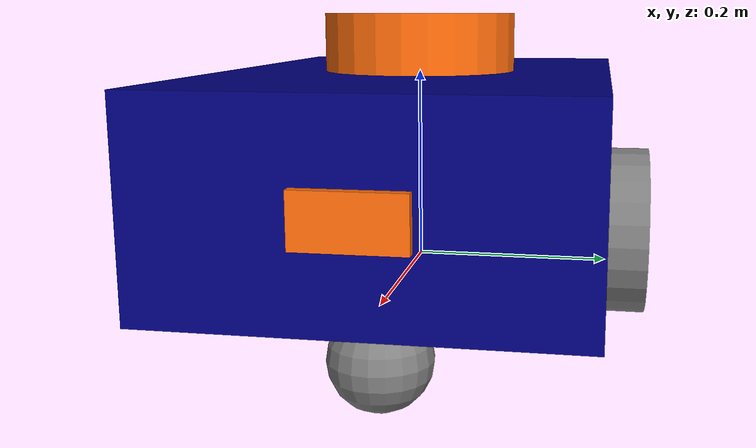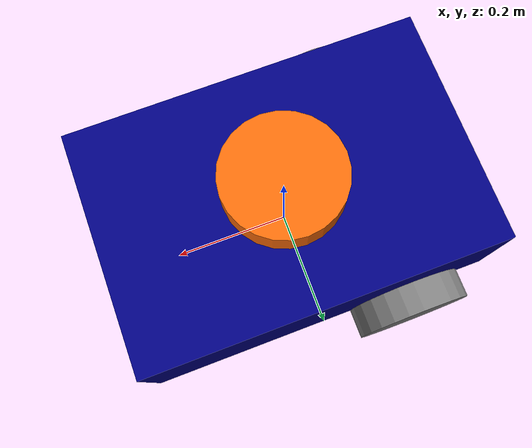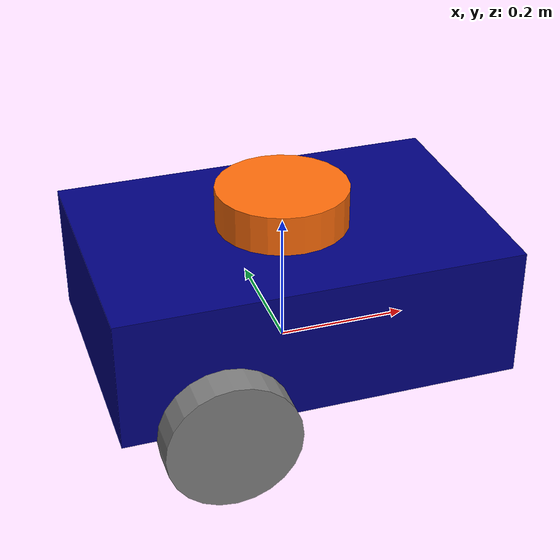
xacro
<?xml version="1.0"?>
<robot name="my_robot" xmlns:xacro="http://www.ros.org/wiki/xacro">

    <xacro:include filename="common_properties.xacro" />
    <xacro:include filename="mobile_base.xacro" />
    <xacro:include filename="mobile_base_gazebo.xacro" />
    <xacro:include filename="base_scan.xacro" />
    <xacro:include filename="camera.xacro" />

</robot>

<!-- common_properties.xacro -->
<robot xmlns:xacro="http://www.ros.org/wiki/xacro">

    <material name="blue">
        <color rgba="0 0 0.5 1" />
    </material>

    <material name="grey">
        <color rgba="0.5 0.5 0.5 1" />
    </material>

    <material name="orange">
    <color rgba="${255/255} ${108/255} ${10/255} 1.0"/>
    </material>

    <xacro:macro name="box_inertia" params="m l w h xyz rpy">
        <inertial>
            <origin xyz="${xyz}" rpy="${rpy}" />
            <mass value="${m}" />
            <inertia ixx="${(m/12) * (h*h + l*l)}" ixy="0" ixz="0"
                     iyy="${(m/12) * (w*w + l*l)}" iyz="0"
                     izz="${(m/12) * (w*w + h*h)}" />
        </inertial>
    </xacro:macro>

    <xacro:macro name="cylinder_inertia" params="m r h xyz rpy">
        <inertial>
            <origin xyz="${xyz}" rpy="${rpy}" />
            <mass value="${m}" />
            <inertia ixx="${(m/12) * (3*r*r + h*h)}" ixy="0" ixz="0"
                     iyy="${(m/12) * (3*r*r + h*h)}" iyz="0"
                     izz="${(m/2) * (r*r)}" />
        </inertial>
    </xacro:macro>

    <xacro:macro name="sphere_inertia" params="m r xyz rpy">
        <inertial>
            <origin xyz="${xyz}" rpy="${rpy}" />
            <mass value="${m}" />
            <inertia ixx="${(2/5) * m * r * r}" ixy="0" ixz="0"
                     iyy="${(2/5) * m * r * r}" iyz="0"
                     izz="${(2/5) * m * r * r}" />
        </inertial>
    </xacro:macro>

</robot>

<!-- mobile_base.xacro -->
<robot xmlns:xacro="http://www.ros.org/wiki/xacro">

    <xacro:property name="base_length" value="0.6" />
    <xacro:property name="base_width" value="0.4" />
    <xacro:property name="base_height" value="0.2" />
    <xacro:property name="wheel_radius" value="0.1" />
    <xacro:property name="wheel_length" value="0.05" />

    <link name="base_footprint" />

    <link name="base_link">
        <visual>
            <geometry>
                <box size="${base_length} ${base_width} ${base_height}" />
            </geometry>
            <origin xyz="0 0 ${base_height / 2.0}" rpy="0 0 0" />
            <material name="blue" />
        </visual>
        <collision>
            <geometry>
                <box size="${base_length} ${base_width} ${base_height}" />
            </geometry>
            <origin xyz="0 0 ${base_height / 2.0}" rpy="0 0 0" />
        </collision>
        <xacro:box_inertia m="5.0" l="${2*base_length}" w="${2*base_width}" h="${2*base_height}"
                           xyz="0 0 ${base_height / 2.0}" rpy="0 0 0" />
    </link>

    <xacro:macro name="wheel_link" params="prefix">
        <link name="${prefix}_wheel_link">
            <visual>
                <geometry>
                    <cylinder radius="${wheel_radius}" length="${wheel_length}" />
                </geometry>
                <origin xyz="0 0 0" rpy="${pi / 2.0} 0 0" />
                <material name="grey" />
            </visual>
            <collision>
                <geometry>
                    <cylinder radius="${wheel_radius}" length="${wheel_length}" />
                </geometry>
                <origin xyz="0 0 0" rpy="${pi / 2.0} 0 0" />
            </collision>
            <xacro:cylinder_inertia m="1.0" r="${2*wheel_radius}" h="${2*wheel_length}"
                                    xyz="0 0 0" rpy="${pi / 2.0} 0 0" />
        </link>
    </xacro:macro>

    <xacro:wheel_link prefix="right" />
    <xacro:wheel_link prefix="left" />

    <link name="caster_wheel_link">
        <visual>
            <geometry>
                <sphere radius="${wheel_radius / 2.0}" />
            </geometry>
            <origin xyz="0 0 0" rpy="0 0 0" />
            <material name="grey" />
        </visual>
        <collision>
            <geometry>
                <sphere radius="${wheel_radius / 2.0}" />
            </geometry>
            <origin xyz="0 0 0" rpy="0 0 0" />
        </collision>
        <xacro:sphere_inertia m="0.5" r="${2*wheel_radius / 2.0}"
                              xyz="0 0 0" rpy="0 0 0" />
    </link>

    <joint name="base_joint" type="fixed">
        <parent link="base_link"/>
        <child link="base_footprint"/>
        <origin xyz="0 0 ${wheel_radius}" rpy="0 0 0"/>
    </joint>

    <joint name="base_right_wheel_joint" type="continuous">
        <parent link="base_link" />
        <child link="right_wheel_link" />
        <origin xyz="${-base_length / 4.0} ${-(base_width + wheel_length) / 2.0} 0" rpy="0 0 0" />
        <axis xyz="0 1 0" />
    </joint>

    <joint name="base_left_wheel_joint" type="continuous">
        <parent link="base_link" />
        <child link="left_wheel_link" />
        <origin xyz="${-base_length / 4.0} ${(base_width + wheel_length) / 2.0} 0" rpy="0 0 0" />
        <axis xyz="0 1 0" />
    </joint>

    <joint name="base_caster_wheel_joint" type="fixed">
        <parent link="base_link" />
        <child link="caster_wheel_link" />
        <origin xyz="${base_length / 3.0} 0 ${-wheel_radius / 2.0}" rpy="0 0 0" />
    </joint>

</robot>

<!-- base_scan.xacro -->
<robot name="my_robot" xmlns:xacro="http://www.ros.org/wiki/xacro">

    <xacro:arg name="laser_visual"  default="true"/>
    <xacro:property name ="scan_radius" value="0.1" />
    <xacro:property name ="scan_length" value="0.06" />

    <link name="base_scan">
        <visual>
            <geometry>
                <cylinder radius="${scan_radius}" length="${scan_length}"/>
            </geometry>
            <origin xyz="0 0 0" rpy="0 0 0" />
            <material name="orange" />
        </visual>
        <collision>
            <geometry>
                <cylinder radius="${scan_radius}" length="${scan_length}"/>
            </geometry>
            <origin xyz="0 0 0" rpy="0 0 0" />
        </collision>
        <xacro:cylinder_inertia m="0.1" r="${2*scan_radius}" h="${2*scan_radius}"
                                    xyz="0 0 0" rpy="${pi / 2.0} 0 0" />
    </link>

    <joint name="base_scan_joint" type="fixed">
        <parent link="base_link"/>
        <child link="base_scan"/>
        <origin xyz="0 0 ${base_height + scan_length/2 }" rpy="0 0 0"/>
    </joint>

    <gazebo reference="base_scan">
        <material>Gazebo/Orange</material>
        <sensor type="ray" name="lidar">
      <pose>0 0 0 0 0 0</pose>
      <visualize>$(arg laser_visual)</visualize>
      <update_rate>5</update_rate>
      <ray>
        <scan>
          <horizontal>
            <samples>360</samples>
            <resolution>1</resolution>
            <min_angle>0.0</min_angle>
            <max_angle>6.28319</max_angle>
          </horizontal>
        </scan>
        <range>
          <min>0.120</min>
          <max>3.5</max>
          <resolution>0.015</resolution>
        </range>
        <noise>
          <type>gaussian</type>
          <mean>0.0</mean>
          <stddev>0.01</stddev>
        </noise>
      </ray>
      <plugin name="scan" filename="libgazebo_ros_ray_sensor.so">
        <ros>
        <!-- name of the topic -->
        <remapping>~/out:=scan</remapping>
      </ros>
      <output_type>sensor_msgs/LaserScan</output_type>
      <frame_name>base_scan</frame_name>
    </plugin>
    </sensor>
    </gazebo>

</robot>

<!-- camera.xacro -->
<robot name="my_robot" xmlns:xacro="http://www.ros.org/wiki/xacro">

    <xacro:property name="camera_length" value="0.01" />
    <xacro:property name="camera_width" value="0.1" />
    <xacro:property name="camera_height" value="0.05" />

    <link  name="camera_link">
        <visual>
            <geometry>
                <box size="${camera_length} ${camera_width} ${camera_height}" />
            </geometry>
            <material name="orange" />
        </visual>
        <collision>
            <geometry>
                <box size="${camera_length} ${camera_width} ${camera_height}" />
            </geometry>
        </collision>
        <xacro:box_inertia m="0.1" l= "${camera_length}" w="${camera_width}" h="${camera_height}"
                           xyz="0 0 0" rpy="0 0 0" />

    </link>

    <joint name="base_camera_joint" type="fixed">
        <parent link="base_link" />
        <child link="camera_link" />
        <origin xyz="${(base_length + camera_length) / 2.0 } 0 ${base_height / 2.0}" rpy="0 0 0" />
    </joint>

    <gazebo reference="camera_link">
        <material>Gazebo/Red</material>
        <sensor name="camera_sensor" type="camera">
                <pose>0 0 0 0 0 0 </pose>
                <visualize>true</visualize>
                <update_rate>30.0</update_rate>
                <camera name="camera">
                    <horizontal_fov>1.047198</horizontal_fov>
                    <image>
                        <width>640</width>
                        <height>480</height>
                        <format>R8G8B8</format>
                    </image>
                    <clip>
                        <near>0.05</near>
                        <far>3</far>
                    </clip>
                </camera>

                <plugin name="camera_controller" filename="libgazebo_ros_camera.so">
                    <baseline>0.2</baseline>
                    <alwaysOn>true</alwaysOn>
                    <updateRate>0.0</updateRate>
                    <frame_name>camera_link</frame_name>
                    <pointCloudCutoff>0.5</pointCloudCutoff>
                    <pointCloudCutoffMax>3.0</pointCloudCutoffMax>
                    <distortionK1>0</distortionK1>
                    <distortionK2>0</distortionK2>
                    <distortionK3>0</distortionK3>
                    <distortionT1>0</distortionT1>
                    <distortionT2>0</distortionT2>
                    <CxPrime>0</CxPrime>
                    <Cx>0</Cx>
                    <Cy>0</Cy>
                    <focalLength>0</focalLength>
                    <hackBaseline>0</hackBaseline>

                </plugin>
        </sensor>
    </gazebo>
</robot>
